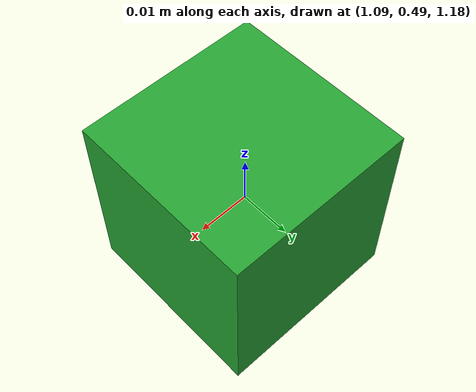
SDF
<?xml version="1.0" ?>
<sdf version="1.4">
  <world name="empty">
    <!-- A global light source -->
    <include>
      <uri>model://sun</uri>
    </include>
    <scene>
      <sky>
        <clouds>
+          <speed>20</speed>
        </clouds>
      </sky>
-    </scene>
    <!-- A ground plane -->
    <include>
      <uri>model://ground_plane</uri>
    </include>

    <!-- Physics settings for simulation -->
    <physics type="ode">
      <max_step_size>0.001</max_step_size>
      <real_time_factor>1</real_time_factor>
      <real_time_update_rate>1000</real_time_update_rate>
      <gravity>0 0 -9.81</gravity>
    </physics>

    <model name="coke_can_box_model">
      <pose frame="">1.1 0.5 1.2 0 0 0</pose>
      <link name="coke_can">
        <inertial>
          <mass>0.001</mass>
          <inertia>
            <ixx>0.00016</ixx>
            <ixy>0</ixy>
            <ixz>0</ixz>
            <iyy>0.00016</iyy>
            <iyz>0</iyz>
            <izz>0.00006</izz>
          </inertia>
        </inertial>
        <collision name="collision">
          <geometry>
            <box>
              <size>0.03 0.03 0.03</size>
            </box>
          </geometry>
          <max_contacts>10</max_contacts>
          <surface>
            <friction>
              <ode>
                <mu>100.0</mu>
                <mu2>100.0</mu2>
              </ode>
            </friction>
            <contact>
              <ode>
                <kp>10000000.0</kp>
                <kd>1.0</kd>
                <min_depth>0.001</min_depth>
                <max_vel>0.1</max_vel>
              </ode>
            </contact>
          </surface>
        </collision>
        <visual name="visual">
          <geometry>
            <box>
              <size>0.03 0.03 0.03</size>
            </box>
          </geometry>
          <material>
            <script>
              <name>Gazebo/Green</name>
              <uri>file://media/materials/scripts/gazebo.material</uri>
            </script>
          </material>
        </visual>
        <self_collide>0</self_collide>
        <kinematic>0</kinematic>
      </link>
    </model>

    <!-- Disable shadows. -->
    <scene>
      <shadows>false</shadows>
    </scene>

  </world>
</sdf>
